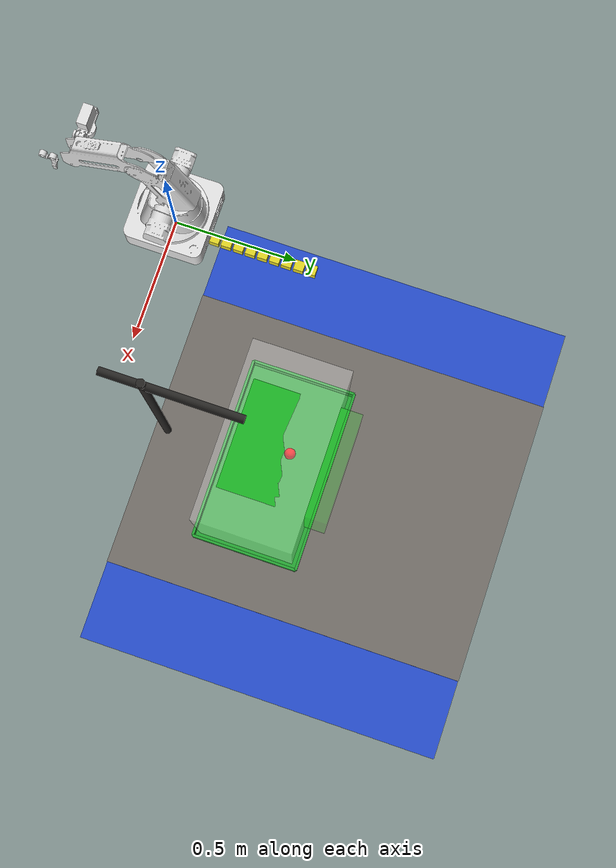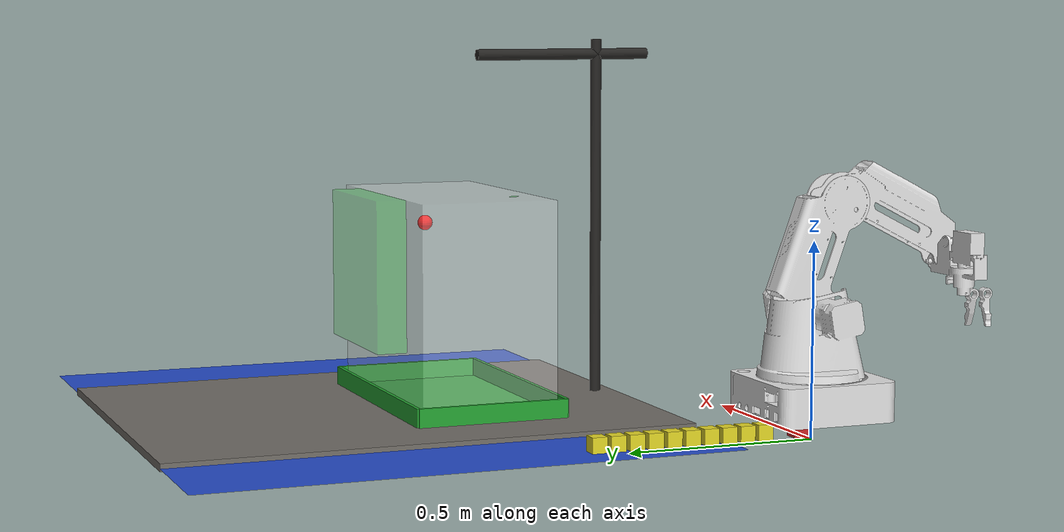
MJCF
<?xml version="1.0" encoding="utf-8"?>
<mujoco>
	<compiler angle="radian" coordinate="local" meshdir="../stls/dobot" texturedir="../textures"></compiler>
	<option timestep="0.002">
		<flag warmstart="enable"></flag>
	</option>

	<include file="shared_pick.xml"></include>

	<worldbody>
		<geom name="mocap_bound" conaffinity="0" contype="0" pos="0.8 0.75 0.38" size="0.2 0.2 0.2" type="box" rgba="0 1 0 0.2" condim="3" material="floor_mat" group="2"></geom>
		<geom name="grip_bound" conaffinity="0" contype="0" pos="0.8 0.685 0.2975" size="0.335 0.185 0.2825" type="box" rgba="1 1 1 0.3" condim="3" material="floor_mat" group="2"></geom>
		<geom name="floor0" pos="0.8 0.9 0" size="0.85 0.70 1" type="plane" condim="3" material="floor_mat"></geom>
		<body name="floor0" pos="0.8 0.75 0">
			<site name="target0" pos="0 0 0.5" size="0.02 0.02 0.02" rgba="1 0 0 1" type="sphere"></site>
			<body pos="0 0.15 0" name="table0">
				<geom size="0.55 0.7 0.01" type="box" mass="2000" material="table_mat"></geom>
				<body name="base_rod" pos = "0 -0.65 0.5">
					<geom size="0.015 0.49" type="cylinder" material="puck_mat"></geom>
					<body name="clamp_rod" pos = "0 0.1 0.45" euler = "1.57 0 0">
						<geom size="0.015 0.25" type="cylinder" material="puck_mat"></geom>
						<site name="target" pos="0 0 -0.32" size="0.02 0.02 0.02" rgba="1 0 0 0" type="sphere"></site>
						<camera euler="-1.570796 0 0" fovy="50" name="top_cam" pos="0 0 -0.32"></camera>
					</body>
				</body>
				<body name="tray" pos = "0 -0.215 0.01">
					<geom size="0.355 0.205 0.001" type="box" mass="300" material="green_block_mat"></geom>
					<geom size="0.355 0.005 0.025" type="box" mass="300" pos="0 0.205 0.025" material="green_block_mat"></geom>
					<geom size="0.355 0.005 0.025" type="box" mass="300" pos="0 -0.205 0.025" material="green_block_mat"></geom>
					<geom size="0.005 0.205 0.025" type="box" mass="300" pos="0.355 0 0.025" material="green_block_mat"></geom>
					<geom size="0.005 0.205 0.025" type="box" mass="300" pos="-0.355 0 0.025" material="green_block_mat"></geom>

				</body>

			</body>
		</body>

		<include file="robot_pick.xml"></include>

		<body name="object0" pos="0.025 0.025 0.025">
			<joint name="object0:joint" type="free" damping="0.01"></joint>
			<geom size="0.02 0.02 0.02" type="box" condim="3" name="object0" material="red_block_mat" mass="2"></geom>
			<site name="object0" pos="0 0 0" size="0.02 0.02 0.02" rgba="1 0 0 1" type="sphere"></site>
		</body>

		<body name="object1" pos="0.025 0.125 0.025">
			<joint name="object1:joint" type="free" damping="0.01"></joint>
			<geom size="0.02 0.02 0.02" type="box" condim="3" name="object1" material="yellow_block_mat" mass="2"></geom>
			<site name="object1" pos="0 0 0" size="0.02 0.02 0.02" rgba="1 0 0 1" type="sphere"></site>
		</body>
		<body name="object2" pos="0.025 0.175 0.025">
			<joint name="object2:joint" type="free" damping="0.01"></joint>
			<geom size="0.02 0.02 0.02" type="box" condim="3" name="object2" material="yellow_block_mat" mass="2"></geom>
			<site name="object2" pos="0 0 0" size="0.02 0.02 0.02" rgba="1 0 0 1" type="sphere"></site>
		</body>
		<body name="object3" pos="0.025 0.225 0.025">
			<joint name="object3:joint" type="free" damping="0.01"></joint>
			<geom size="0.02 0.02 0.02" type="box" condim="3" name="object3" material="yellow_block_mat" mass="2"></geom>
			<site name="object3" pos="0 0 0" size="0.02 0.02 0.02" rgba="1 0 0 1" type="sphere"></site>
		</body>
		<body name="object4" pos="0.025 0.275 0.025">
			<joint name="object4:joint" type="free" damping="0.01"></joint>
			<geom size="0.02 0.02 0.02" type="box" condim="3" name="object4" material="yellow_block_mat" mass="2"></geom>
			<site name="object4" pos="0 0 0" size="0.02 0.02 0.02" rgba="1 0 0 1" type="sphere"></site>
		</body>
		<body name="object5" pos="0.025 0.325 0.025">
			<joint name="object5:joint" type="free" damping="0.01"></joint>
			<geom size="0.02 0.02 0.02" type="box" condim="3" name="object5" material="yellow_block_mat" mass="2"></geom>
			<site name="object5" pos="0 0 0" size="0.02 0.02 0.02" rgba="1 0 0 1" type="sphere"></site>
		</body>
		<body name="object6" pos="0.025 0.375 0.025">
			<joint name="object6:joint" type="free" damping="0.01"></joint>
			<geom size="0.02 0.02 0.02" type="box" condim="3" name="object6" material="yellow_block_mat" mass="2"></geom>
			<site name="object6" pos="0 0 0" size="0.02 0.02 0.02" rgba="1 0 0 1" type="sphere"></site>
		</body>
		<body name="object7" pos="0.025 0.425 0.025">
			<joint name="object7:joint" type="free" damping="0.01"></joint>
			<geom size="0.02 0.02 0.02" type="box" condim="3" name="object7" material="yellow_block_mat" mass="2"></geom>
			<site name="object7" pos="0 0 0" size="0.02 0.02 0.02" rgba="1 0 0 1" type="sphere"></site>
		</body>
		<body name="object8" pos="0.025 0.475 0.025">
			<joint name="object8:joint" type="free" damping="0.01"></joint>
			<geom size="0.02 0.02 0.02" type="box" condim="3" name="object8" material="yellow_block_mat" mass="2"></geom>
			<site name="object8" pos="0 0 0" size="0.02 0.02 0.02" rgba="1 0 0 1" type="sphere"></site>
		</body>
		<body name="object9" pos="0.025 0.525 0.025">
			<joint name="object9:joint" type="free" damping="0.01"></joint>
			<geom size="0.02 0.02 0.02" type="box" condim="3" name="object9" material="yellow_block_mat" mass="2"></geom>
			<site name="object9" pos="0 0 0" size="0.02 0.02 0.02" rgba="1 0 0 1" type="sphere"></site>
		</body>
		<body name="object10" pos="0.025 0.575 0.025">
			<joint name="object10:joint" type="free" damping="0.01"></joint>
			<geom size="0.02 0.02 0.02" type="box" condim="3" name="object10" material="yellow_block_mat" mass="2"></geom>
			<site name="object10" pos="0 0 0" size="0.02 0.02 0.02" rgba="1 0 0 1" type="sphere"></site>
		</body>

		<light directional="true" ambient="0.2 0.2 0.2" diffuse="0.8 0.8 0.8" specular="0.3 0.3 0.3" castshadow="false" pos="0 0 4" dir="0 0 -1" name="light0"></light>
	</worldbody>

	<actuator>
		<position ctrllimited="true" ctrlrange="0 0.025" joint="dobot:r_gripper_joint" kp="30000" name="dobot:r_gripper_joint"></position>
		<position ctrllimited="true" ctrlrange="-0.025 0" joint="dobot:l_gripper_joint" kp="30000" name="dobot:l_gripper_joint"></position>
	</actuator>
</mujoco>

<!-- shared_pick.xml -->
<mujoco>
    <asset>
        <texture type="skybox" builtin="gradient" rgb1="0 0 0" rgb2="0.5 0.5 1" width="32" height="32"></texture>
        <texture name="texture_block" file="block.png" gridsize="3 4" gridlayout=".U..LFRB.D.."></texture>
        <texture name="red_block" file="block_red.png" gridsize="3 4" gridlayout=".U..LFRB.D.."></texture>
        <texture name="yellow_block" file="block_yellow.png" gridsize="3 4" gridlayout=".U..LFRB.D.."></texture>
        <texture name="green_block" file="block_green.png" gridsize="3 4" gridlayout=".U..LFRB.D.."></texture>
        <texture name="blue_block" file="block_blue.png" gridsize="3 4" gridlayout=".U..LFRB.D.."></texture>
        <texture name="pink_block" file="block_pink.png" gridsize="3 4" gridlayout=".U..LFRB.D.."></texture>
        <texture name="magenta_block" file="block_magenta.png" gridsize="3 4" gridlayout=".U..LFRB.D.."></texture>
        <texture name="arm_tex" file="arm.png" type="2d"></texture>
        <texture name="base_tex" file="base.png" type="2d"></texture>
        <texture name="base_blue_tex" file="base_blue.png" type="2d"></texture>
        <texture name="base_green_tex" file="base_green.png" type="2d"></texture>
        <texture name="gripper_tex" file="gripper.png" type="2d"></texture>

        <material name="table_mat" specular="0" shininess="0.5" reflectance="0" rgba="0.6 0.6 0.6 1" texture="base_tex"></material>
        <material name="floor_mat" specular="0" shininess="0.5" reflectance="0" rgba="1 1 1 1" texture="base_blue_tex"></material>
        <material name="tray_mat" specular="0" shininess="0.5" reflectance="0" rgba="1 1 1 1" texture="base_green_tex"></material>
        <material name="block_mat" specular="0" shininess="0.5" reflectance="0" rgba="1 1 1 1" texture="texture_block"></material>
        <material name="red_block_mat" specular="0" shininess="0.5" reflectance="0" rgba="1 1 1 1" texture="red_block"></material>
        <material name="yellow_block_mat" specular="0" shininess="0.5" reflectance="0" rgba="1 1 1 1" texture="yellow_block"></material>
        <material name="green_block_mat" specular="0" shininess="0.5" reflectance="0" rgba="1 1 1 1" texture="green_block"></material>
        <material name="blue_block_mat" specular="0" shininess="0.5" reflectance="0" rgba="1 1 1 1" texture="blue_block"></material>
        <material name="pink_block_mat" specular="0" shininess="0.5" reflectance="0" rgba="1 1 1 1" texture="pink_block"></material>
        <material name="magenta_block_mat" specular="0" shininess="0.5" reflectance="0" rgba="1 1 1 1" texture="magenta_block"></material>
        <material name="puck_mat" specular="0" shininess="0.5" reflectance="0" rgba="0.2 0.2 0.2 1" texture="base_tex"></material>
        <material name="dobot_mat" shininess="0.03" specular="0.4" rgba ="1 1 1 0"></material>
        <material name="arm_mat" shininess="0.03" specular="0.4" texture="arm_tex"></material>
        <material name="gripper_mat" shininess="0.03" specular="0.4" texture="gripper_tex"></material>

        <mesh file="fpart1.stl" name="dobot:rear_arm_link" scale="0.002 0.002 0.002"></mesh>
		<mesh file="fpart2.stl" name="dobot:front_arm_link" scale="0.002 0.002 0.002"></mesh>
		<mesh file="fpart3.stl" name="dobot:lift_link" scale="0.002 0.002 0.002"></mesh>
		<mesh file="fpart4.stl" name="dobot:base_link" scale="0.002 0.002 0.002"></mesh>
        <mesh file="gripper_base.stl" name="dobot:gripper_link" scale="0.002 0.002 0.002"></mesh>
		<mesh file="leftArm.stl" name="dobot:l_gripper_link" scale="0.002 0.002 0.002"></mesh>
		<mesh file="rightArm.stl" name="dobot:r_gripper_link" scale="0.002 0.002 0.002"></mesh>

    </asset>

    <equality>
        <weld body1="dobot:mocap" body2="dobot:gripper_link" solimp="0.9 0.95 0.001" solref="0.02 1"></weld>
    </equality>

    <default>
        <default class="dobot:fetch">
            <geom margin="0.001" material="dobot_mat" rgba="1 1 1 1" solimp="0.99 0.99 0.01" solref="0.01 1" type="mesh" user="0" group="1"></geom>
            <joint armature="1" damping="50" frictionloss="0" stiffness="0"></joint>

            <default class="dobot:fetchGripper">
                <geom condim="4" margin="0.001" type="box" user="0" rgba="0.356 0.361 0.376 1.0"></geom>
                <joint armature="100" damping="1000" limited="true" solimplimit="0.99 0.999 0.01" solreflimit="0.01 1" type="slide"></joint>
            </default>

            <default class="dobot:white">
                <geom rgba="0.9 0.9 0.9 1.0"></geom>
            </default>
            <default class="dobot:black">
                <geom rgba="0.2 0.2 0.2 1.0"></geom>
            </default>
        </default>
    </default>
</mujoco>

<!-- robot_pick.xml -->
<mujoco>
	<body mocap="true" name="dobot:mocap" pos="1 1 1">
		<geom conaffinity="0" contype="0" pos="0 0 0" rgba="0 0.5 0 0" size="0.005 0.005 0.005" type="box"></geom>
		<geom conaffinity="0" contype="0" pos="0 0 0" rgba="0 0.5 0 0" size="1 0.005 0.005" type="box"></geom>
		<geom conaffinity="0" contype="0" pos="0 0 0" rgba="0 0.5 0 0" size="0.005 1 0.001" type="box"></geom>
		<geom conaffinity="0" contype="0" pos="0 0 0" rgba="0 0.5 0 0" size="0.005 0.005 1" type="box"></geom>

	</body>
	<body childclass="dobot:fetch" name="dobot:base_link" pos="0 0 0.1" euler="0 0 0">
		<joint armature="0.0001" axis="1 0 0" damping="1e+11" name="dobot:slide0" pos="0 0 0" type="slide"></joint>
		<joint armature="0.0001" axis="0 1 0" damping="1e+11" name="dobot:slide1" pos="0 0 0" type="slide"></joint>
		<joint armature="0.0001" axis="0 0 1" damping="1e+11" name="dobot:slide2" pos="0 0 0" type="slide"></joint>
			<inertial diaginertia="1.2869 1.2236 0.9868" mass="1.5" pos="0 0 0"></inertial>
			<geom mesh="dobot:base_link" name="dobot:base_link" material="arm_mat" class="dobot:white"></geom>
			<body name="dobot:lift_link" pos="0 0 0.066" euler="0 0 0">
				<inertial diaginertia="1.2869 1.2236 0.9868" mass="0.5" pos="0 0 0"></inertial>
				<geom mesh="dobot:lift_link" name="dobot:lift_link" material="arm_mat" class="dobot:white"></geom>
				<joint name="dobot:base_pan" type="hinge" pos="0 0 0" axis="0 0 1" range="-1.57 1.57" limited="true"/>
				<body name="dobot:rear_arm_link" pos="0 0 0.16" euler="0 0 0">
					<inertial diaginertia="1.2869 1.2236 0.9868" mass="0.85" pos="0 0 0" ></inertial>
					<geom mesh="dobot:rear_arm_link" name="dobot:rear_arm_link" pos = "0 0 0" material="arm_mat" class="dobot:white"></geom>
					<joint name="dobot:base_tilt" type="hinge" pos="0 0 0" axis="1 0 0" range="0 1.4835" limited="true"/>
					<body name="dobot:front_arm_link" pos="0 -0.098 0.246" euler="0 0 0">
						<inertial diaginertia="1.2869 1.2236 0.9868" mass="0.85" pos="0 0 0"></inertial>
						<geom mesh="dobot:front_arm_link" name="dobot:front_arm_link" pos = "0 0 0" material="arm_mat" class="dobot:white"></geom>
						<joint name="dobot:elbow_flex" type="hinge" pos="0 0 0" axis="1 0 0" range="-1.658 0.174" limited="true"/>
						<body name="dobot:gripper_link" pos="0 -0.26 -0.136" euler="0 0 0">
							<inertial diaginertia="1.2869 1.2236 0.9868" mass="0.3294" pos="0 0 0"></inertial>
							<geom mesh="dobot:gripper_link" name="dobot:gripper_link" pos = "0 0 0" material="gripper_mat" class="dobot:white"></geom>
							<joint name="dobot:wrist_flex" type="hinge" pos="0 0 0" axis="1 0 0"/>

							<body childclass="dobot:fetchGripper" name="dobot:l_gripper_link" pos="0 -0.1425 -0.09" euler="0 0 0">
								<inertial diaginertia="1.2869 1.2236 0.9868" mass="0.3294" pos="0 0 0"></inertial>
								<geom mesh="dobot:l_gripper_link" name="dobot:l_gripper_link" pos = "0 0 0" material="gripper_mat" class="dobot:white"></geom>
								<joint name="dobot:l_gripper_joint" type="slide" axis="0 1 0" limited="true" range="-0.025 0"/>
							</body>
							<body childclass="dobot:fetchGripper" name="dobot:r_gripper_link" pos="0 -0.1025 -0.09" euler="0 0 0">
								<inertial diaginertia="1.2869 1.2236 0.9868" mass="0.3294" pos="0 0 0"></inertial>
								<geom mesh="dobot:r_gripper_link" name="dobot:r_gripper_link" pos = "0 0 0" material="gripper_mat" class="dobot:white"></geom>
								<joint name="dobot:r_gripper_joint" type="slide" axis="0 1 0" limited="true" range = "0 0.025"/>
							</body>
							<site name="dobot:grip" pos="0 -0.123 -0.14" rgba="1 1 1 0" size="0.02 0.02 0.02"></site>
						</body>
					</body>
				</body>
			</body>
		</body>

</mujoco>
